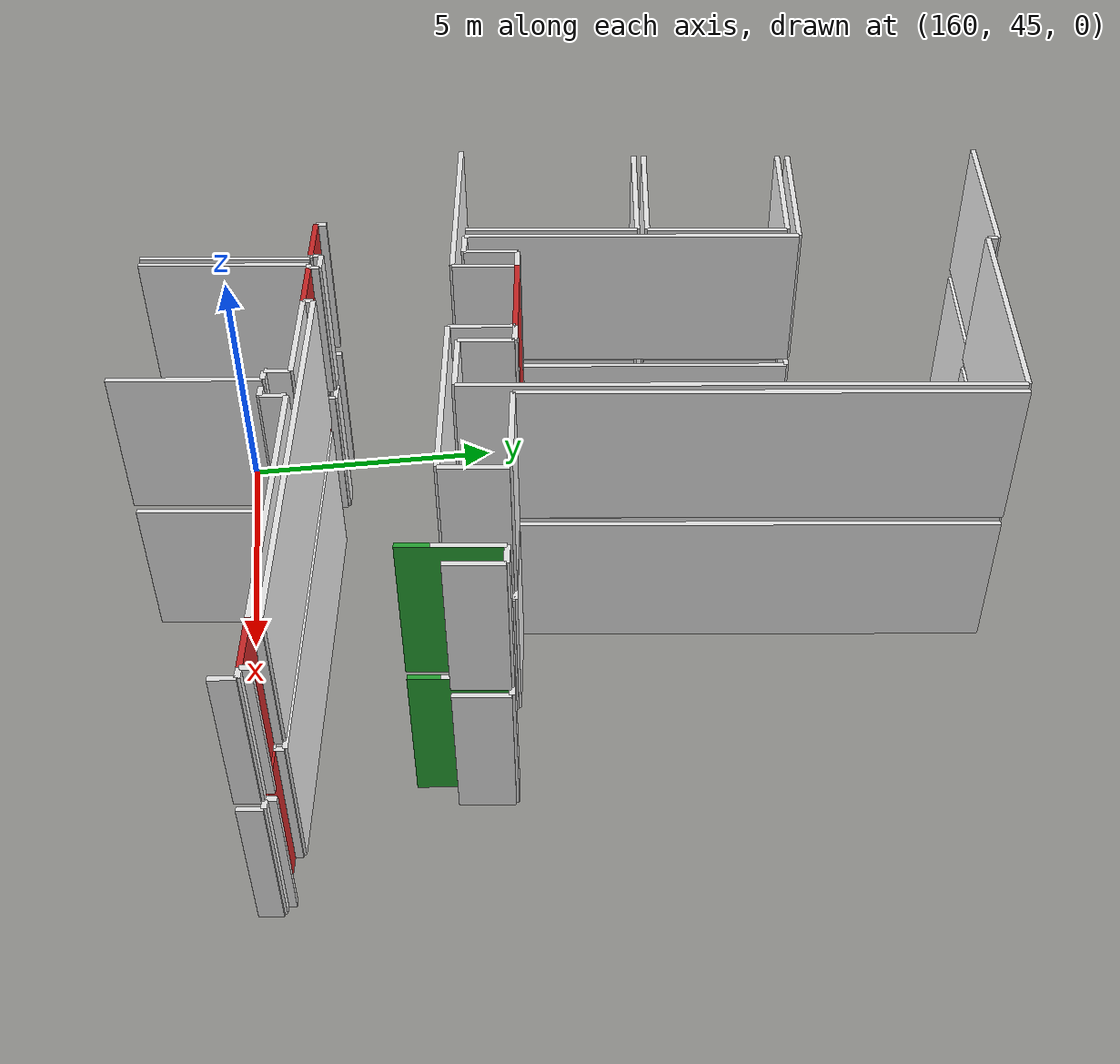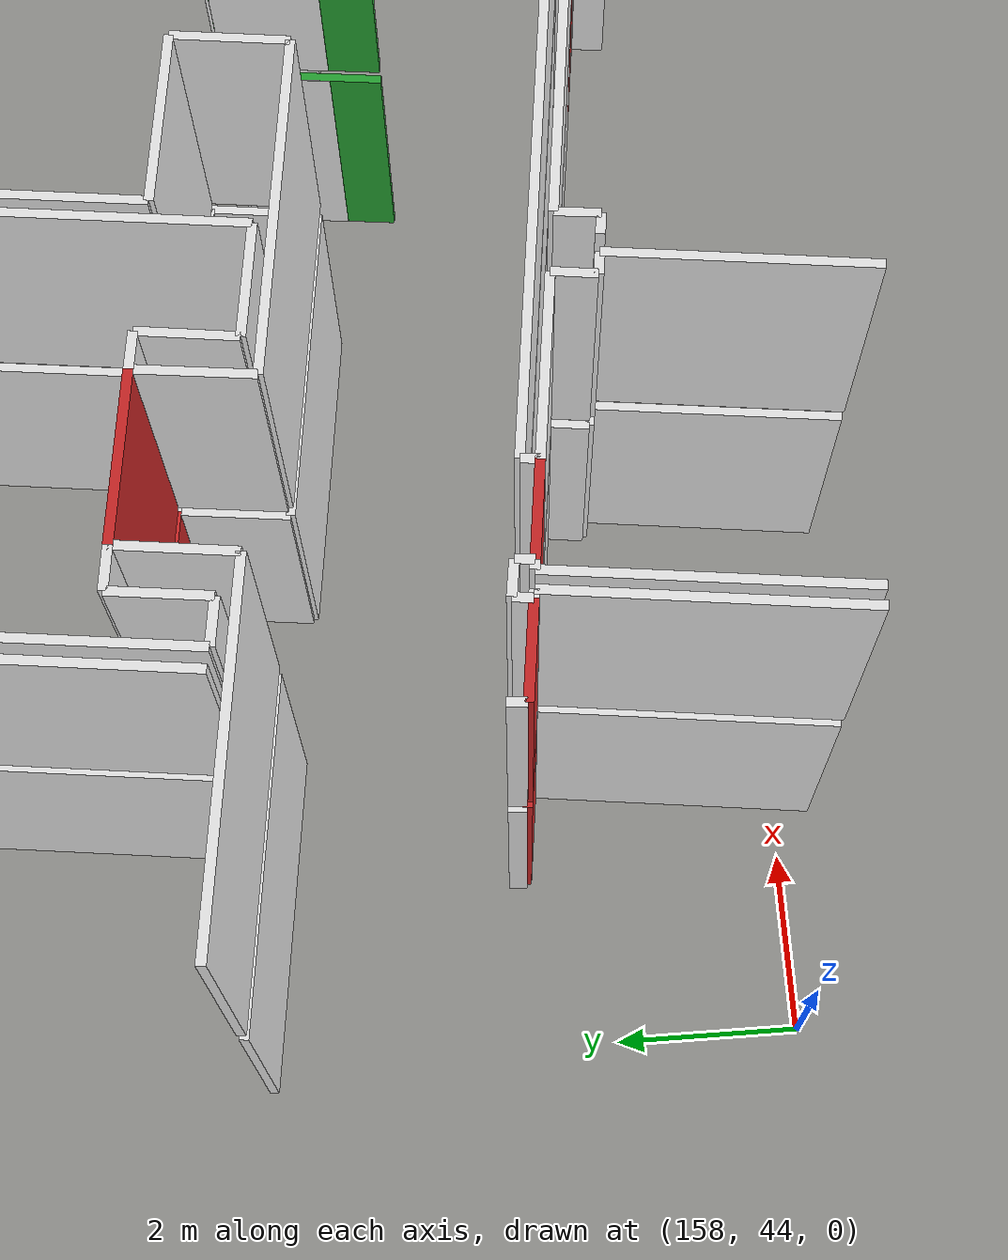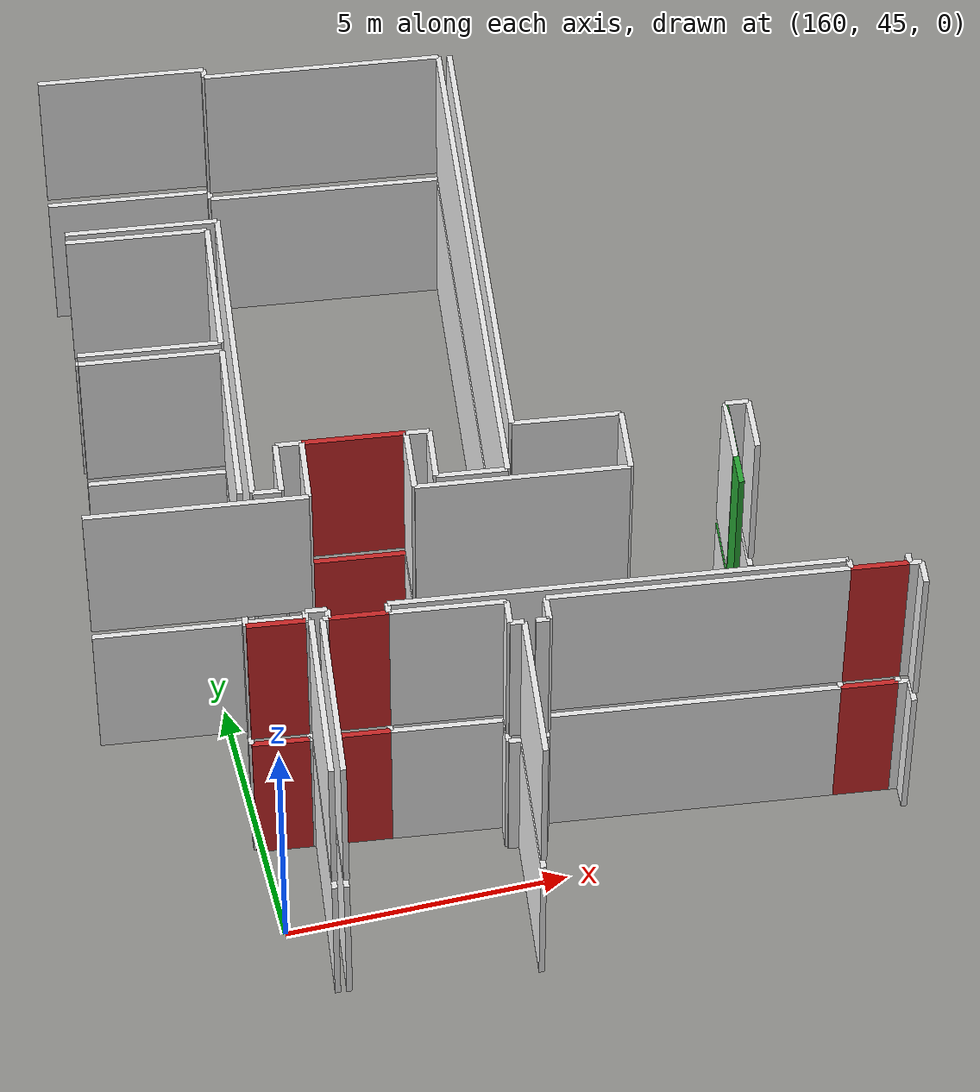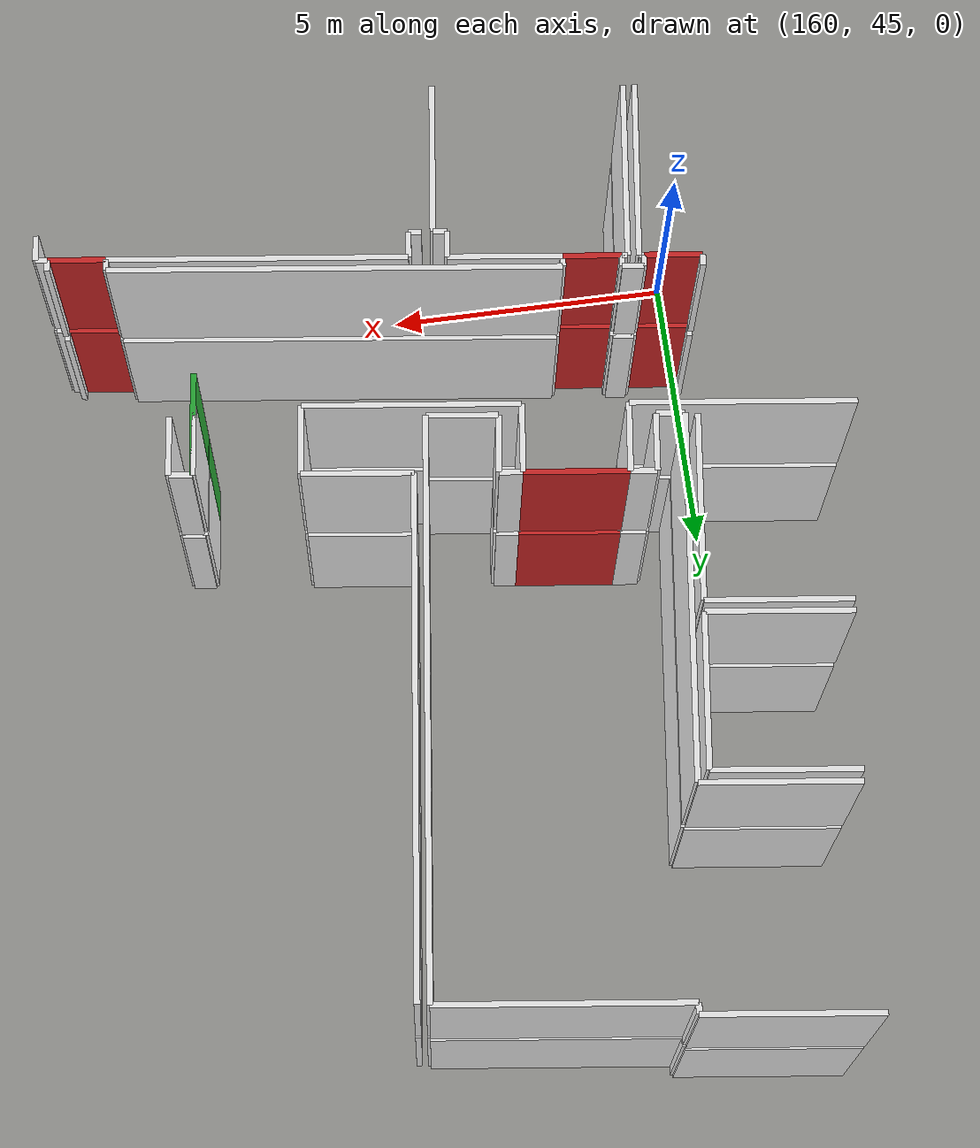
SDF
<sdf version="1.6">
 <world name="default">
  <model name="wall_160.4_46.8_0.0">
   <static>true</static>
   <pose>160.3850000000093 46.81999999983236 1.5 0 0 -0.1206236686924795</pose>
   <link name="link">
    <visual name="visual">
     <geometry><box><size>0.9972462083198822 0.1 3</size></box></geometry>
     <material>
      <script><uri>file://media/materials/scripts/gazebo.material</uri><name>Gazebo/Red</name></script>
     </material>
    </visual>
   </link>
  </model>
  <model name="wall_161.8_46.7_0.0">
   <static>true</static>
   <pose>161.7600000000093 46.66000000014901 1.5 0 0 -0.11942892612851068</pose>
   <link name="link">
    <visual name="visual">
     <geometry><box><size>1.0071742649744493 0.1 3</size></box></geometry>
     <material>
      <script><uri>file://media/materials/scripts/gazebo.material</uri><name>Gazebo/Red</name></script>
     </material>
    </visual>
   </link>
  </model>
  <model name="wall_170.5_45.6_0.0">
   <static>true</static>
   <pose>170.48499999998603 45.609999999869615 1.5 0 0 -0.1206236686924795</pose>
   <link name="link">
    <visual name="visual">
     <geometry><box><size>0.9972462083198822 0.1 3</size></box></geometry>
     <material>
      <script><uri>file://media/materials/scripts/gazebo.material</uri><name>Gazebo/Red</name></script>
     </material>
    </visual>
   </link>
  </model>
  <model name="wall_168.8_48.8_0.0">
   <static>true</static>
   <pose>168.83500000002095 48.825000000186265 1.5 0 0 -1.6875809222415865</pose>
   <link name="link">
    <visual name="visual">
     <geometry><box><size>1.8022763384447233 0.1 3</size></box></geometry>
     <material>
      <script><uri>file://media/materials/scripts/gazebo.material</uri><name>Gazebo/Green</name></script>
     </material>
    </visual>
   </link>
  </model>
  <model name="wall_162.6_50.5_0.0">
   <static>true</static>
   <pose>162.57000000000698 50.484999999869615 1.5 0 0 3.02415796381574</pose>
   <link name="link">
    <visual name="visual">
     <geometry><box><size>1.7923448329168745 0.1 3</size></box></geometry>
     <material>
      <script><uri>file://media/materials/scripts/gazebo.material</uri><name>Gazebo/Red</name></script>
     </material>
    </visual>
   </link>
  </model>
  <model name="wall_171.0_45.6_0.0">
   <static>true</static>
   <pose>170.99499999999534 45.64500000001863 1.5 0 0 -1.7273982035881303</pose>
   <link name="link">
    <visual name="visual">
     <geometry><box><size>0.1923538410258384 0.1 3</size></box></geometry>
     <material>
      <script><uri>file://media/materials/scripts/gazebo.material</uri><name>Gazebo/White</name></script>
     </material>
    </visual>
   </link>
  </model>
  <model name="wall_170.0_45.8_0.0">
   <static>true</static>
   <pose>170.0 45.764999999897555 1.5 0 0 1.4659193879370842</pose>
   <link name="link">
    <visual name="visual">
     <geometry><box><size>0.19104973169180559 0.1 3</size></box></geometry>
     <material>
      <script><uri>file://media/materials/scripts/gazebo.material</uri><name>Gazebo/White</name></script>
     </material>
    </visual>
   </link>
  </model>
  <model name="wall_166.1_46.3_0.0">
   <static>true</static>
   <pose>166.14500000001863 46.324999999953434 1.5 0 0 3.0218576675715907</pose>
   <link name="link">
    <visual name="visual">
     <geometry><box><size>7.7857433813364185 0.1 3</size></box></geometry>
     <material>
      <script><uri>file://media/materials/scripts/gazebo.material</uri><name>Gazebo/White</name></script>
     </material>
    </visual>
   </link>
  </model>
  <model name="wall_162.3_46.7_0.0">
   <static>true</static>
   <pose>162.27000000001863 46.69500000006519 1.5 0 0 -1.675673265652709</pose>
   <link name="link">
    <visual name="visual">
     <geometry><box><size>0.19104973169180559 0.1 3</size></box></geometry>
     <material>
      <script><uri>file://media/materials/scripts/gazebo.material</uri><name>Gazebo/White</name></script>
     </material>
    </visual>
   </link>
  </model>
  <model name="wall_161.3_46.8_0.0">
   <static>true</static>
   <pose>161.27000000001863 46.81500000017695 1.5 0 0 1.4659193879370842</pose>
   <link name="link">
    <visual name="visual">
     <geometry><box><size>0.19104973169180559 0.1 3</size></box></geometry>
     <material>
      <script><uri>file://media/materials/scripts/gazebo.material</uri><name>Gazebo/White</name></script>
     </material>
    </visual>
   </link>
  </model>
  <model name="wall_161.1_46.9_0.0">
   <static>true</static>
   <pose>161.09500000000116 46.93500000005588 1.5 0 0 3.007271212150422</pose>
   <link name="link">
    <visual name="visual">
     <geometry><box><size>0.3733630940800139 0.1 3</size></box></geometry>
     <material>
      <script><uri>file://media/materials/scripts/gazebo.material</uri><name>Gazebo/White</name></script>
     </material>
    </visual>
   </link>
  </model>
  <model name="wall_160.9_46.9_0.0">
   <static>true</static>
   <pose>160.89499999998952 46.859999999869615 1.5 0 0 -1.7196862741197598</pose>
   <link name="link">
    <visual name="visual">
     <geometry><box><size>0.20223748434128064 0.1 3</size></box></geometry>
     <material>
      <script><uri>file://media/materials/scripts/gazebo.material</uri><name>Gazebo/White</name></script>
     </material>
    </visual>
   </link>
  </model>
  <model name="wall_159.9_47.0_0.0">
   <static>true</static>
   <pose>159.89999999999418 46.97999999998137 1.5 0 0 1.4711276745918913</pose>
   <link name="link">
    <visual name="visual">
     <geometry><box><size>0.20099751260381943 0.1 3</size></box></geometry>
     <material>
      <script><uri>file://media/materials/scripts/gazebo.material</uri><name>Gazebo/White</name></script>
     </material>
    </visual>
   </link>
  </model>
  <model name="wall_159.6_49.6_0.0">
   <static>true</static>
   <pose>159.62000000002445 49.609999999869615 1.5 0 0 -0.11984180790081929</pose>
   <link name="link">
    <visual name="visual">
     <geometry><box><size>3.8475966524597003 0.1 3</size></box></geometry>
     <material>
      <script><uri>file://media/materials/scripts/gazebo.material</uri><name>Gazebo/White</name></script>
     </material>
    </visual>
   </link>
  </model>
  <model name="wall_161.6_50.0_0.0">
   <static>true</static>
   <pose>161.60500000001048 49.984999999869615 1.5 0 0 1.4474586259198403</pose>
   <link name="link">
    <visual name="visual">
     <geometry><box><size>1.2192620718694447 0.1 3</size></box></geometry>
     <material>
      <script><uri>file://media/materials/scripts/gazebo.material</uri><name>Gazebo/White</name></script>
     </material>
    </visual>
   </link>
  </model>
  <model name="wall_163.4_49.8_0.0">
   <static>true</static>
   <pose>163.39000000001397 49.77499999990687 1.5 0 0 -1.6859866085024886</pose>
   <link name="link">
    <visual name="visual">
     <geometry><box><size>1.2180722474113592 0.1 3</size></box></geometry>
     <material>
      <script><uri>file://media/materials/scripts/gazebo.material</uri><name>Gazebo/White</name></script>
     </material>
    </visual>
   </link>
  </model>
  <model name="wall_165.2_48.9_0.0">
   <static>true</static>
   <pose>165.1600000000035 48.949999999953434 1.5 0 0 -0.11900029336803308</pose>
   <link name="link">
    <visual name="visual">
     <geometry><box><size>3.7062110031539515 0.1 3</size></box></geometry>
     <material>
      <script><uri>file://media/materials/scripts/gazebo.material</uri><name>Gazebo/White</name></script>
     </material>
    </visual>
   </link>
  </model>
  <model name="wall_167.1_49.3_0.0">
   <static>true</static>
   <pose>167.07500000001164 49.330000000074506 1.5 0 0 1.446441332248135</pose>
   <link name="link">
    <visual name="visual">
     <geometry><box><size>1.2093386624324964 0.1 3</size></box></geometry>
     <material>
      <script><uri>file://media/materials/scripts/gazebo.material</uri><name>Gazebo/White</name></script>
     </material>
    </visual>
   </link>
  </model>
  <model name="wall_168.9_49.1_0.0">
   <static>true</static>
   <pose>168.8649999999907 49.11499999999069 1.5 0 0 -1.6941340276703445</pose>
   <link name="link">
    <visual name="visual">
     <geometry><box><size>1.2192620723387293 0.1 3</size></box></geometry>
     <material>
      <script><uri>file://media/materials/scripts/gazebo.material</uri><name>Gazebo/White</name></script>
     </material>
    </visual>
   </link>
  </model>
  <model name="wall_164.7_45.8_0.0">
   <static>true</static>
   <pose>164.7050000000163 45.83499999996275 1.5 0 0 -0.12970253828111597</pose>
   <link name="link">
    <visual name="visual">
     <geometry><box><size>0.23194827011012187 0.1 3</size></box></geometry>
     <material>
      <script><uri>file://media/materials/scripts/gazebo.material</uri><name>Gazebo/White</name></script>
     </material>
    </visual>
   </link>
  </model>
  <model name="wall_164.8_46.0_0.0">
   <static>true</static>
   <pose>164.84500000000116 46.049999999813735 1.5 0 0 1.4625257359507529</pose>
   <link name="link">
    <visual name="visual">
     <geometry><box><size>0.46270941201207827 0.1 3</size></box></geometry>
     <material>
      <script><uri>file://media/materials/scripts/gazebo.material</uri><name>Gazebo/White</name></script>
     </material>
    </visual>
   </link>
  </model>
  <model name="wall_167.4_46.0_0.0">
   <static>true</static>
   <pose>167.42999999999302 45.9749999998603 1.5 0 0 -0.11858166439217471</pose>
   <link name="link">
    <visual name="visual">
     <geometry><box><size>5.156209848308469 0.1 3</size></box></geometry>
     <material>
      <script><uri>file://media/materials/scripts/gazebo.material</uri><name>Gazebo/White</name></script>
     </material>
    </visual>
   </link>
  </model>
  <model name="wall_171.1_45.5_0.0">
   <static>true</static>
   <pose>171.0799999999872 45.53499999991618 1.5 0 0 -0.14888994659904642</pose>
   <link name="link">
    <visual name="visual">
     <geometry><box><size>0.20223748414268597 0.1 3</size></box></geometry>
     <material>
      <script><uri>file://media/materials/scripts/gazebo.material</uri><name>Gazebo/White</name></script>
     </material>
    </visual>
   </link>
  </model>
  <model name="wall_171.2_45.3_0.0">
   <static>true</static>
   <pose>171.15499999999884 45.300000000046566 1.5 0 0 -1.6839473083735081</pose>
   <link name="link">
    <visual name="visual">
     <geometry><box><size>0.4428317964528541 0.1 3</size></box></geometry>
     <material>
      <script><uri>file://media/materials/scripts/gazebo.material</uri><name>Gazebo/White</name></script>
     </material>
    </visual>
   </link>
  </model>
  <model name="wall_160.6_51.4_0.0">
   <static>true</static>
   <pose>160.60999999998603 51.35000000009313 1.5 0 0 1.4487071893822745</pose>
   <link name="link">
    <visual name="visual">
     <geometry><box><size>3.284448203056534 0.1 3</size></box></geometry>
     <material>
      <script><uri>file://media/materials/scripts/gazebo.material</uri><name>Gazebo/White</name></script>
     </material>
    </visual>
   </link>
  </model>
  <model name="wall_159.6_53.1_0.0">
   <static>true</static>
   <pose>159.57000000000698 53.125 1.5 0 0 3.025185827469413</pose>
   <link name="link">
    <visual name="visual">
     <geometry><box><size>2.4968980755988457 0.1 3</size></box></geometry>
     <material>
      <script><uri>file://media/materials/scripts/gazebo.material</uri><name>Gazebo/White</name></script>
     </material>
    </visual>
   </link>
  </model>
  <model name="wall_160.4_59.9_0.0">
   <static>true</static>
   <pose>160.44000000000233 59.93999999994412 1.5 0 0 -0.12022278677294355</pose>
   <link name="link">
    <visual name="visual">
     <geometry><box><size>3.0016662039824453 0.1 3</size></box></geometry>
     <material>
      <script><uri>file://media/materials/scripts/gazebo.material</uri><name>Gazebo/White</name></script>
     </material>
    </visual>
   </link>
  </model>
  <model name="wall_161.9_59.7_0.0">
   <static>true</static>
   <pose>161.9199999999837 59.66499999980442 1.5 0 0 -1.675673265652709</pose>
   <link name="link">
    <visual name="visual">
     <geometry><box><size>0.19104973169180559 0.1 3</size></box></geometry>
     <material>
      <script><uri>file://media/materials/scripts/gazebo.material</uri><name>Gazebo/White</name></script>
     </material>
    </visual>
   </link>
  </model>
  <model name="wall_164.0_59.3_0.0">
   <static>true</static>
   <pose>164.02999999999884 59.31499999994412 1.5 0 0 -0.11970791786700266</pose>
   <link name="link">
    <visual name="visual">
     <geometry><box><size>4.27056202392456 0.1 3</size></box></geometry>
     <material>
      <script><uri>file://media/materials/scripts/gazebo.material</uri><name>Gazebo/White</name></script>
     </material>
    </visual>
   </link>
  </model>
  <model name="wall_165.6_54.1_0.0">
   <static>true</static>
   <pose>165.55000000001746 54.11499999999069 1.5 0 0 -1.691540779261425</pose>
   <link name="link">
    <visual name="visual">
     <geometry><box><size>9.96253481813775 0.1 3</size></box></geometry>
     <material>
      <script><uri>file://media/materials/scripts/gazebo.material</uri><name>Gazebo/White</name></script>
     </material>
    </visual>
   </link>
  </model>
  <model name="wall_164.3_49.2_0.0">
   <static>true</static>
   <pose>164.3399999999965 49.24499999987893 1.5 0 0 3.0192558198525035</pose>
   <link name="link">
    <visual name="visual">
     <geometry><box><size>1.2291867230188886 0.1 3</size></box></geometry>
     <material>
      <script><uri>file://media/materials/scripts/gazebo.material</uri><name>Gazebo/White</name></script>
     </material>
    </visual>
   </link>
  </model>
  <model name="wall_163.8_49.8_0.0">
   <static>true</static>
   <pose>163.7949999999837 49.824999999953434 1.5 0 0 1.44278726814752</pose>
   <link name="link">
    <visual name="visual">
     <geometry><box><size>1.0183319696888344 0.1 3</size></box></geometry>
     <material>
      <script><uri>file://media/materials/scripts/gazebo.material</uri><name>Gazebo/White</name></script>
     </material>
    </visual>
   </link>
  </model>
  <model name="wall_163.7_50.4_0.0">
   <static>true</static>
   <pose>163.6600000000035 50.35499999998137 1.5 0 0 3.017237659490783</pose>
   <link name="link">
    <visual name="visual">
     <geometry><box><size>0.4031128873571693 0.1 3</size></box></geometry>
     <material>
      <script><uri>file://media/materials/scripts/gazebo.material</uri><name>Gazebo/White</name></script>
     </material>
    </visual>
   </link>
  </model>
  <model name="wall_161.5_50.6_0.0">
   <static>true</static>
   <pose>161.4549999999872 50.61499999999069 1.5 0 0 3.030935431805427</pose>
   <link name="link">
    <visual name="visual">
     <geometry><box><size>0.4527692569492954 0.1 3</size></box></geometry>
     <material>
      <script><uri>file://media/materials/scripts/gazebo.material</uri><name>Gazebo/White</name></script>
     </material>
    </visual>
   </link>
  </model>
  <model name="wall_161.2_50.1_0.0">
   <static>true</static>
   <pose>161.1699999999837 50.13500000000931 1.5 0 0 -1.6890538359013414</pose>
   <link name="link">
    <visual name="visual">
     <geometry><box><size>1.0171037314295985 0.1 3</size></box></geometry>
     <material>
      <script><uri>file://media/materials/scripts/gazebo.material</uri><name>Gazebo/White</name></script>
     </material>
    </visual>
   </link>
  </model>
  <model name="wall_160.9_49.7_0.0">
   <static>true</static>
   <pose>160.8649999999907 49.65999999991618 1.5 0 0 3.019750216455228</pose>
   <link name="link">
    <visual name="visual">
     <geometry><box><size>0.4936598018854468 0.1 3</size></box></geometry>
     <material>
      <script><uri>file://media/materials/scripts/gazebo.material</uri><name>Gazebo/White</name></script>
     </material>
    </visual>
   </link>
  </model>
  <model name="wall_161.0_52.9_0.0">
   <static>true</static>
   <pose>161.0 52.85499999998137 1.5 0 0 1.4513051071243046</pose>
   <link name="link">
    <visual name="visual">
     <geometry><box><size>6.375460767737294 0.1 3</size></box></geometry>
     <material>
      <script><uri>file://media/materials/scripts/gazebo.material</uri><name>Gazebo/White</name></script>
     </material>
    </visual>
   </link>
  </model>
  <model name="wall_160.0_56.2_0.0">
   <static>true</static>
   <pose>160.04000000000815 56.17999999993481 1.5 0 0 3.0227523090833937</pose>
   <link name="link">
    <visual name="visual">
     <geometry><box><size>2.6990368652271632 0.1 3</size></box></geometry>
     <material>
      <script><uri>file://media/materials/scripts/gazebo.material</uri><name>Gazebo/White</name></script>
     </material>
    </visual>
   </link>
  </model>
  <model name="wall_169.3_49.2_0.0">
   <static>true</static>
   <pose>169.27999999999884 49.15999999991618 1.5 0 0 1.453687582178367</pose>
   <link name="link">
    <visual name="visual">
     <geometry><box><size>1.0270345661421774 0.1 3</size></box></geometry>
     <material>
      <script><uri>file://media/materials/scripts/gazebo.material</uri><name>Gazebo/White</name></script>
     </material>
    </visual>
   </link>
  </model>
  <model name="wall_169.1_49.7_0.0">
   <static>true</static>
   <pose>169.14000000001397 49.69500000006519 1.5 0 0 3.01723765836245</pose>
   <link name="link">
    <visual name="visual">
     <geometry><box><size>0.4031128874726857 0.1 3</size></box></geometry>
     <material>
      <script><uri>file://media/materials/scripts/gazebo.material</uri><name>Gazebo/White</name></script>
     </material>
    </visual>
   </link>
  </model>
  <model name="wall_166.2_50.0_0.0">
   <static>true</static>
   <pose>166.21000000002095 50.045000000158325 1.5 0 0 3.0198571684511863</pose>
   <link name="link">
    <visual name="visual">
     <geometry><box><size>1.894016895386348 0.1 3</size></box></geometry>
     <material>
      <script><uri>file://media/materials/scripts/gazebo.material</uri><name>Gazebo/White</name></script>
     </material>
    </visual>
   </link>
  </model>
  <model name="wall_165.8_54.6_0.0">
   <static>true</static>
   <pose>165.80999999999767 54.59499999997206 1.5 0 0 1.4496339921387622</pose>
   <link name="link">
    <visual name="visual">
     <geometry><box><size>8.935507819571937 0.1 3</size></box></geometry>
     <material>
      <script><uri>file://media/materials/scripts/gazebo.material</uri><name>Gazebo/White</name></script>
     </material>
    </visual>
   </link>
  </model>
  <model name="wall_160.8_45.2_0.0">
   <static>true</static>
   <pose>160.77499999999418 45.16500000003725 1.5 0 0 -1.6932095761983161</pose>
   <link name="link">
    <visual name="visual">
     <geometry><box><size>3.193900436690713 0.1 3</size></box></geometry>
     <material>
      <script><uri>file://media/materials/scripts/gazebo.material</uri><name>Gazebo/White</name></script>
     </material>
    </visual>
   </link>
  </model>
  <model name="wall_160.9_46.8_0.0">
   <static>true</static>
   <pose>160.92499999998836 46.75499999988824 1.5 0 0 -0.11065721876040727</pose>
   <link name="link">
    <visual name="visual">
     <geometry><box><size>0.09055385132429387 0.1 3</size></box></geometry>
     <material>
      <script><uri>file://media/materials/scripts/gazebo.material</uri><name>Gazebo/White</name></script>
     </material>
    </visual>
   </link>
  </model>
  <model name="wall_161.0_45.1_0.0">
   <static>true</static>
   <pose>160.97000000000116 45.14500000001863 1.5 0 0 1.4514917943710839</pose>
   <link name="link">
    <visual name="visual">
     <geometry><box><size>3.1926947864596977 0.1 3</size></box></geometry>
     <material>
      <script><uri>file://media/materials/scripts/gazebo.material</uri><name>Gazebo/White</name></script>
     </material>
    </visual>
   </link>
  </model>
  <model name="wall_161.2_46.7_0.0">
   <static>true</static>
   <pose>161.20999999999185 46.72500000009313 1.5 0 0 -0.09966865024353948</pose>
   <link name="link">
    <visual name="visual">
     <geometry><box><size>0.10049875622371936 0.1 3</size></box></geometry>
     <material>
      <script><uri>file://media/materials/scripts/gazebo.material</uri><name>Gazebo/White</name></script>
     </material>
    </visual>
   </link>
  </model>
  <model name="wall_163.2_46.5_0.0">
   <static>true</static>
   <pose>163.2399999999907 46.47999999998137 1.5 0 0 -0.12184243713456504</pose>
   <link name="link">
    <visual name="visual">
     <geometry><box><size>1.9746392075417871 0.1 3</size></box></geometry>
     <material>
      <script><uri>file://media/materials/scripts/gazebo.material</uri><name>Gazebo/White</name></script>
     </material>
    </visual>
   </link>
  </model>
  <model name="wall_164.2_46.1_0.0">
   <static>true</static>
   <pose>164.18999999997322 46.12999999988824 1.5 0 0 -1.7004988639562184</pose>
   <link name="link">
    <visual name="visual">
     <geometry><box><size>0.46389654015248694 0.1 3</size></box></geometry>
     <material>
      <script><uri>file://media/materials/scripts/gazebo.material</uri><name>Gazebo/White</name></script>
     </material>
    </visual>
   </link>
  </model>
  <model name="wall_164.3_45.9_0.0">
   <static>true</static>
   <pose>164.27999999999884 45.88500000000931 1.5 0 0 -0.12435499368110904</pose>
   <link name="link">
    <visual name="visual">
     <geometry><box><size>0.24186773247205975 0.1 3</size></box></geometry>
     <material>
      <script><uri>file://media/materials/scripts/gazebo.material</uri><name>Gazebo/White</name></script>
     </material>
    </visual>
   </link>
  </model>
  <model name="wall_164.2_44.5_0.0">
   <static>true</static>
   <pose>164.23500000001513 44.515000000130385 1.5 0 0 -1.6919709595141523</pose>
   <link name="link">
    <visual name="visual">
     <geometry><box><size>2.73001831492187 0.1 3</size></box></geometry>
     <material>
      <script><uri>file://media/materials/scripts/gazebo.material</uri><name>Gazebo/White</name></script>
     </material>
    </visual>
   </link>
  </model>
  <model name="wall_161.0_54.5_0.0">
   <static>true</static>
   <pose>160.99499999999534 54.50499999988824 1.5 0 0 1.4478244572426628</pose>
   <link name="link">
    <visual name="visual">
     <geometry><box><size>2.6903159664943592 0.1 3</size></box></geometry>
     <material>
      <script><uri>file://media/materials/scripts/gazebo.material</uri><name>Gazebo/White</name></script>
     </material>
    </visual>
   </link>
  </model>
  <model name="wall_159.9_56.0_0.0">
   <static>true</static>
   <pose>159.91499999997905 55.98999999999069 1.5 0 0 3.021688668113723</pose>
   <link name="link">
    <visual name="visual">
     <geometry><box><size>2.508007177047398 0.1 3</size></box></geometry>
     <material>
      <script><uri>file://media/materials/scripts/gazebo.material</uri><name>Gazebo/White</name></script>
     </material>
    </visual>
   </link>
  </model>
  <model name="wall_159.6_53.3_0.0">
   <static>true</static>
   <pose>159.5899999999965 53.32000000006519 1.5 0 0 -0.12038282090969171</pose>
   <link name="link">
    <visual name="visual">
     <geometry><box><size>2.498079262226073 0.1 3</size></box></geometry>
     <material>
      <script><uri>file://media/materials/scripts/gazebo.material</uri><name>Gazebo/White</name></script>
     </material>
    </visual>
   </link>
  </model>
  <model name="wall_160.4_46.8_3.2">
   <static>true</static>
   <pose>160.3850000000093 46.81999999983236 4.7 0 0 -0.1206236686924795</pose>
   <link name="link">
    <visual name="visual">
     <geometry><box><size>0.9972462083198822 0.1 3</size></box></geometry>
     <material>
      <script><uri>file://media/materials/scripts/gazebo.material</uri><name>Gazebo/Red</name></script>
     </material>
    </visual>
   </link>
  </model>
  <model name="wall_161.8_46.7_3.2">
   <static>true</static>
   <pose>161.7600000000093 46.66000000014901 4.7 0 0 -0.11942892612851068</pose>
   <link name="link">
    <visual name="visual">
     <geometry><box><size>1.0071742649744493 0.1 3</size></box></geometry>
     <material>
      <script><uri>file://media/materials/scripts/gazebo.material</uri><name>Gazebo/Red</name></script>
     </material>
    </visual>
   </link>
  </model>
  <model name="wall_170.5_45.6_3.2">
   <static>true</static>
   <pose>170.48499999998603 45.609999999869615 4.7 0 0 -0.1206236686924795</pose>
   <link name="link">
    <visual name="visual">
     <geometry><box><size>0.9972462083198822 0.1 3</size></box></geometry>
     <material>
      <script><uri>file://media/materials/scripts/gazebo.material</uri><name>Gazebo/Red</name></script>
     </material>
    </visual>
   </link>
  </model>
  <model name="wall_168.8_48.8_3.2">
   <static>true</static>
   <pose>168.83500000002095 48.825000000186265 4.7 0 0 -1.6875809222415865</pose>
   <link name="link">
    <visual name="visual">
     <geometry><box><size>1.8022763384447233 0.1 3</size></box></geometry>
     <material>
      <script><uri>file://media/materials/scripts/gazebo.material</uri><name>Gazebo/Green</name></script>
     </material>
    </visual>
   </link>
  </model>
  <model name="wall_162.6_50.5_3.2">
   <static>true</static>
   <pose>162.57000000000698 50.484999999869615 4.7 0 0 3.02415796381574</pose>
   <link name="link">
    <visual name="visual">
     <geometry><box><size>1.7923448329168745 0.1 3</size></box></geometry>
     <material>
      <script><uri>file://media/materials/scripts/gazebo.material</uri><name>Gazebo/Red</name></script>
     </material>
    </visual>
   </link>
  </model>
  <model name="wall_171.0_45.6_3.2">
   <static>true</static>
   <pose>170.99499999999534 45.64500000001863 4.7 0 0 -1.7273982035881303</pose>
   <link name="link">
    <visual name="visual">
     <geometry><box><size>0.1923538410258384 0.1 3</size></box></geometry>
     <material>
      <script><uri>file://media/materials/scripts/gazebo.material</uri><name>Gazebo/White</name></script>
     </material>
    </visual>
   </link>
  </model>
  <model name="wall_170.0_45.8_3.2">
   <static>true</static>
   <pose>170.0 45.764999999897555 4.7 0 0 1.4659193879370842</pose>
   <link name="link">
    <visual name="visual">
     <geometry><box><size>0.19104973169180559 0.1 3</size></box></geometry>
     <material>
      <script><uri>file://media/materials/scripts/gazebo.material</uri><name>Gazebo/White</name></script>
     </material>
    </visual>
   </link>
  </model>
  <model name="wall_166.1_46.3_3.2">
   <static>true</static>
   <pose>166.14500000001863 46.324999999953434 4.7 0 0 3.0218576675715907</pose>
   <link name="link">
    <visual name="visual">
     <geometry><box><size>7.7857433813364185 0.1 3</size></box></geometry>
     <material>
      <script><uri>file://media/materials/scripts/gazebo.material</uri><name>Gazebo/White</name></script>
     </material>
    </visual>
   </link>
  </model>
  <model name="wall_162.3_46.7_3.2">
   <static>true</static>
   <pose>162.27000000001863 46.69500000006519 4.7 0 0 -1.675673265652709</pose>
   <link name="link">
    <visual name="visual">
     <geometry><box><size>0.19104973169180559 0.1 3</size></box></geometry>
     <material>
      <script><uri>file://media/materials/scripts/gazebo.material</uri><name>Gazebo/White</name></script>
     </material>
    </visual>
   </link>
  </model>
  <model name="wall_161.3_46.8_3.2">
   <static>true</static>
   <pose>161.27000000001863 46.81500000017695 4.7 0 0 1.4659193879370842</pose>
   <link name="link">
    <visual name="visual">
     <geometry><box><size>0.19104973169180559 0.1 3</size></box></geometry>
     <material>
      <script><uri>file://media/materials/scripts/gazebo.material</uri><name>Gazebo/White</name></script>
     </material>
    </visual>
   </link>
  </model>
  <model name="wall_161.1_46.9_3.2">
   <static>true</static>
   <pose>161.09500000000116 46.93500000005588 4.7 0 0 3.007271212150422</pose>
   <link name="link">
    <visual name="visual">
     <geometry><box><size>0.3733630940800139 0.1 3</size></box></geometry>
     <material>
      <script><uri>file://media/materials/scripts/gazebo.material</uri><name>Gazebo/White</name></script>
     </material>
    </visual>
   </link>
  </model>
  <model name="wall_160.9_46.9_3.2">
   <static>true</static>
   <pose>160.89499999998952 46.859999999869615 4.7 0 0 -1.7196862741197598</pose>
   <link name="link">
    <visual name="visual">
     <geometry><box><size>0.20223748434128064 0.1 3</size></box></geometry>
     <material>
      <script><uri>file://media/materials/scripts/gazebo.material</uri><name>Gazebo/White</name></script>
     </material>
    </visual>
   </link>
  </model>
  <model name="wall_159.9_47.0_3.2">
   <static>true</static>
   <pose>159.89999999999418 46.97999999998137 4.7 0 0 1.4711276745918913</pose>
   <link name="link">
    <visual name="visual">
     <geometry><box><size>0.20099751260381943 0.1 3</size></box></geometry>
     <material>
      <script><uri>file://media/materials/scripts/gazebo.material</uri><name>Gazebo/White</name></script>
     </material>
    </visual>
   </link>
  </model>
  <model name="wall_159.6_49.6_3.2">
   <static>true</static>
   <pose>159.62000000002445 49.609999999869615 4.7 0 0 -0.11984180790081929</pose>
   <link name="link">
    <visual name="visual">
     <geometry><box><size>3.8475966524597003 0.1 3</size></box></geometry>
     <material>
      <script><uri>file://media/materials/scripts/gazebo.material</uri><name>Gazebo/White</name></script>
     </material>
    </visual>
   </link>
  </model>
  <model name="wall_161.6_50.0_3.2">
   <static>true</static>
   <pose>161.60500000001048 49.984999999869615 4.7 0 0 1.4474586259198403</pose>
   <link name="link">
    <visual name="visual">
     <geometry><box><size>1.2192620718694447 0.1 3</size></box></geometry>
     <material>
      <script><uri>file://media/materials/scripts/gazebo.material</uri><name>Gazebo/White</name></script>
     </material>
    </visual>
   </link>
  </model>
  <model name="wall_163.4_49.8_3.2">
   <static>true</static>
   <pose>163.39000000001397 49.77499999990687 4.7 0 0 -1.6859866085024886</pose>
   <link name="link">
    <visual name="visual">
     <geometry><box><size>1.2180722474113592 0.1 3</size></box></geometry>
     <material>
      <script><uri>file://media/materials/scripts/gazebo.material</uri><name>Gazebo/White</name></script>
     </material>
    </visual>
   </link>
  </model>
  <model name="wall_165.2_48.9_3.2">
   <static>true</static>
   <pose>165.1600000000035 48.949999999953434 4.7 0 0 -0.11900029336803308</pose>
   <link name="link">
    <visual name="visual">
     <geometry><box><size>3.7062110031539515 0.1 3</size></box></geometry>
     <material>
      <script><uri>file://media/materials/scripts/gazebo.material</uri><name>Gazebo/White</name></script>
     </material>
    </visual>
   </link>
  </model>
  <model name="wall_167.1_49.3_3.2">
   <static>true</static>
   <pose>167.07500000001164 49.330000000074506 4.7 0 0 1.446441332248135</pose>
   <link name="link">
    <visual name="visual">
     <geometry><box><size>1.2093386624324964 0.1 3</size></box></geometry>
     <material>
      <script><uri>file://media/materials/scripts/gazebo.material</uri><name>Gazebo/White</name></script>
     </material>
    </visual>
   </link>
  </model>
  <model name="wall_168.9_49.1_3.2">
   <static>true</static>
   <pose>168.8649999999907 49.11499999999069 4.7 0 0 -1.6941340276703445</pose>
   <link name="link">
    <visual name="visual">
     <geometry><box><size>1.2192620723387293 0.1 3</size></box></geometry>
     <material>
      <script><uri>file://media/materials/scripts/gazebo.material</uri><name>Gazebo/White</name></script>
     </material>
    </visual>
   </link>
  </model>
  <model name="wall_164.7_45.8_3.2">
   <static>true</static>
   <pose>164.7050000000163 45.83499999996275 4.7 0 0 -0.12970253828111597</pose>
   <link name="link">
    <visual name="visual">
     <geometry><box><size>0.23194827011012187 0.1 3</size></box></geometry>
     <material>
      <script><uri>file://media/materials/scripts/gazebo.material</uri><name>Gazebo/White</name></script>
     </material>
    </visual>
   </link>
  </model>
  <model name="wall_164.8_46.0_3.2">
   <static>true</static>
   <pose>164.84500000000116 46.049999999813735 4.7 0 0 1.4625257359507529</pose>
   <link name="link">
    <visual name="visual">
     <geometry><box><size>0.46270941201207827 0.1 3</size></box></geometry>
     <material>
      <script><uri>file://media/materials/scripts/gazebo.material</uri><name>Gazebo/White</name></script>
     </material>
    </visual>
   </link>
  </model>
  <model name="wall_167.4_46.0_3.2">
   <static>true</static>
   <pose>167.42999999999302 45.9749999998603 4.7 0 0 -0.11858166439217471</pose>
   <link name="link">
    <visual name="visual">
     <geometry><box><size>5.156209848308469 0.1 3</size></box></geometry>
     <material>
      <script><uri>file://media/materials/scripts/gazebo.material</uri><name>Gazebo/White</name></script>
     </material>
    </visual>
   </link>
  </model>
  <model name="wall_171.1_45.5_3.2">
   <static>true</static>
   <pose>171.0799999999872 45.53499999991618 4.7 0 0 -0.14888994659904642</pose>
   <link name="link">
    <visual name="visual">
     <geometry><box><size>0.20223748414268597 0.1 3</size></box></geometry>
     <material>
      <script><uri>file://media/materials/scripts/gazebo.material</uri><name>Gazebo/White</name></script>
     </material>
    </visual>
   </link>
  </model>
  <model name="wall_171.2_45.3_3.2">
   <static>true</static>
   <pose>171.15499999999884 45.300000000046566 4.7 0 0 -1.6839473083735081</pose>
   <link name="link">
    <visual name="visual">
     <geometry><box><size>0.4428317964528541 0.1 3</size></box></geometry>
     <material>
      <script><uri>file://media/materials/scripts/gazebo.material</uri><name>Gazebo/White</name></script>
     </material>
    </visual>
   </link>
  </model>
  <model name="wall_160.6_51.4_3.2">
   <static>true</static>
   <pose>160.60999999998603 51.35000000009313 4.7 0 0 1.4487071893822745</pose>
   <link name="link">
    <visual name="visual">
     <geometry><box><size>3.284448203056534 0.1 3</size></box></geometry>
     <material>
      <script><uri>file://media/materials/scripts/gazebo.material</uri><name>Gazebo/White</name></script>
     </material>
    </visual>
   </link>
  </model>
  <model name="wall_159.6_53.1_3.2">
   <static>true</static>
   <pose>159.57000000000698 53.125 4.7 0 0 3.025185827469413</pose>
   <link name="link">
    <visual name="visual">
     <geometry><box><size>2.4968980755988457 0.1 3</size></box></geometry>
     <material>
      <script><uri>file://media/materials/scripts/gazebo.material</uri><name>Gazebo/White</name></script>
     </material>
    </visual>
   </link>
  </model>
  <model name="wall_160.4_59.9_3.2">
   <static>true</static>
   <pose>160.44000000000233 59.93999999994412 4.7 0 0 -0.12022278677294355</pose>
   <link name="link">
    <visual name="visual">
     <geometry><box><size>3.0016662039824453 0.1 3</size></box></geometry>
     <material>
      <script><uri>file://media/materials/scripts/gazebo.material</uri><name>Gazebo/White</name></script>
     </material>
    </visual>
   </link>
  </model>
  <model name="wall_161.9_59.7_3.2">
   <static>true</static>
   <pose>161.9199999999837 59.66499999980442 4.7 0 0 -1.675673265652709</pose>
   <link name="link">
    <visual name="visual">
     <geometry><box><size>0.19104973169180559 0.1 3</size></box></geometry>
     <material>
      <script><uri>file://media/materials/scripts/gazebo.material</uri><name>Gazebo/White</name></script>
     </material>
    </visual>
   </link>
  </model>
  <model name="wall_164.0_59.3_3.2">
   <static>true</static>
   <pose>164.02999999999884 59.31499999994412 4.7 0 0 -0.11970791786700266</pose>
   <link name="link">
    <visual name="visual">
     <geometry><box><size>4.27056202392456 0.1 3</size></box></geometry>
     <material>
      <script><uri>file://media/materials/scripts/gazebo.material</uri><name>Gazebo/White</name></script>
     </material>
    </visual>
   </link>
  </model>
  <model name="wall_165.6_54.1_3.2">
   <static>true</static>
   <pose>165.55000000001746 54.11499999999069 4.7 0 0 -1.691540779261425</pose>
   <link name="link">
    <visual name="visual">
     <geometry><box><size>9.96253481813775 0.1 3</size></box></geometry>
     <material>
      <script><uri>file://media/materials/scripts/gazebo.material</uri><name>Gazebo/White</name></script>
     </material>
    </visual>
   </link>
  </model>
  <model name="wall_164.3_49.2_3.2">
   <static>true</static>
   <pose>164.3399999999965 49.24499999987893 4.7 0 0 3.0192558198525035</pose>
   <link name="link">
    <visual name="visual">
     <geometry><box><size>1.2291867230188886 0.1 3</size></box></geometry>
     <material>
      <script><uri>file://media/materials/scripts/gazebo.material</uri><name>Gazebo/White</name></script>
     </material>
    </visual>
   </link>
  </model>
  <model name="wall_163.8_49.8_3.2">
   <static>true</static>
   <pose>163.7949999999837 49.824999999953434 4.7 0 0 1.44278726814752</pose>
   <link name="link">
    <visual name="visual">
     <geometry><box><size>1.0183319696888344 0.1 3</size></box></geometry>
     <material>
      <script><uri>file://media/materials/scripts/gazebo.material</uri><name>Gazebo/White</name></script>
     </material>
    </visual>
   </link>
  </model>
  <model name="wall_163.7_50.4_3.2">
   <static>true</static>
   <pose>163.6600000000035 50.35499999998137 4.7 0 0 3.017237659490783</pose>
   <link name="link">
    <visual name="visual">
     <geometry><box><size>0.4031128873571693 0.1 3</size></box></geometry>
     <material>
      <script><uri>file://media/materials/scripts/gazebo.material</uri><name>Gazebo/White</name></script>
     </material>
    </visual>
   </link>
  </model>
  <model name="wall_161.5_50.6_3.2">
   <static>true</static>
   <pose>161.4549999999872 50.61499999999069 4.7 0 0 3.030935431805427</pose>
   <link name="link">
    <visual name="visual">
     <geometry><box><size>0.4527692569492954 0.1 3</size></box></geometry>
     <material>
      <script><uri>file://media/materials/scripts/gazebo.material</uri><name>Gazebo/White</name></script>
     </material>
    </visual>
   </link>
  </model>
  <model name="wall_161.2_50.1_3.2">
   <static>true</static>
   <pose>161.1699999999837 50.13500000000931 4.7 0 0 -1.6890538359013414</pose>
   <link name="link">
    <visual name="visual">
     <geometry><box><size>1.0171037314295985 0.1 3</size></box></geometry>
     <material>
      <script><uri>file://media/materials/scripts/gazebo.material</uri><name>Gazebo/White</name></script>
     </material>
    </visual>
   </link>
  </model>
  <model name="wall_160.9_49.7_3.2">
   <static>true</static>
   <pose>160.8649999999907 49.65999999991618 4.7 0 0 3.019750216455228</pose>
   <link name="link">
    <visual name="visual">
     <geometry><box><size>0.4936598018854468 0.1 3</size></box></geometry>
     <material>
      <script><uri>file://media/materials/scripts/gazebo.material</uri><name>Gazebo/White</name></script>
     </material>
    </visual>
   </link>
  </model>
  <model name="wall_161.0_52.9_3.2">
   <static>true</static>
   <pose>161.0 52.85499999998137 4.7 0 0 1.4513051071243046</pose>
   <link name="link">
    <visual name="visual">
     <geometry><box><size>6.375460767737294 0.1 3</size></box></geometry>
     <material>
      <script><uri>file://media/materials/scripts/gazebo.material</uri><name>Gazebo/White</name></script>
     </material>
    </visual>
   </link>
  </model>
  <model name="wall_160.0_56.2_3.2">
   <static>true</static>
   <pose>160.04000000000815 56.17999999993481 4.7 0 0 3.0227523090833937</pose>
   <link name="link">
    <visual name="visual">
     <geometry><box><size>2.6990368652271632 0.1 3</size></box></geometry>
     <material>
      <script><uri>file://media/materials/scripts/gazebo.material</uri><name>Gazebo/White</name></script>
     </material>
    </visual>
   </link>
  </model>
  <model name="wall_169.3_49.2_3.2">
   <static>true</static>
   <pose>169.27999999999884 49.15999999991618 4.7 0 0 1.453687582178367</pose>
   <link name="link">
    <visual name="visual">
     <geometry><box><size>1.0270345661421774 0.1 3</size></box></geometry>
     <material>
      <script><uri>file://media/materials/scripts/gazebo.material</uri><name>Gazebo/White</name></script>
     </material>
    </visual>
   </link>
  </model>
  <model name="wall_169.1_49.7_3.2">
   <static>true</static>
   <pose>169.14000000001397 49.69500000006519 4.7 0 0 3.01723765836245</pose>
   <link name="link">
    <visual name="visual">
     <geometry><box><size>0.4031128874726857 0.1 3</size></box></geometry>
     <material>
      <script><uri>file://media/materials/scripts/gazebo.material</uri><name>Gazebo/White</name></script>
     </material>
    </visual>
   </link>
  </model>
  <model name="wall_166.2_50.0_3.2">
   <static>true</static>
   <pose>166.21000000002095 50.045000000158325 4.7 0 0 3.0198571684511863</pose>
   <link name="link">
    <visual name="visual">
     <geometry><box><size>1.894016895386348 0.1 3</size></box></geometry>
     <material>
      <script><uri>file://media/materials/scripts/gazebo.material</uri><name>Gazebo/White</name></script>
     </material>
    </visual>
   </link>
  </model>
  <model name="wall_165.8_54.6_3.2">
   <static>true</static>
   <pose>165.80999999999767 54.59499999997206 4.7 0 0 1.4496339921387622</pose>
   <link name="link">
    <visual name="visual">
     <geometry><box><size>8.935507819571937 0.1 3</size></box></geometry>
     <material>
      <script><uri>file://media/materials/scripts/gazebo.material</uri><name>Gazebo/White</name></script>
     </material>
    </visual>
   </link>
  </model>
  <model name="wall_160.8_45.2_3.2">
   <static>true</static>
   <pose>160.77499999999418 45.16500000003725 4.7 0 0 -1.6932095761983161</pose>
   <link name="link">
    <visual name="visual">
     <geometry><box><size>3.193900436690713 0.1 3</size></box></geometry>
     <material>
      <script><uri>file://media/materials/scripts/gazebo.material</uri><name>Gazebo/White</name></script>
     </material>
    </visual>
   </link>
  </model>
  <model name="wall_160.9_46.8_3.2">
   <static>true</static>
   <pose>160.92499999998836 46.75499999988824 4.7 0 0 -0.11065721876040727</pose>
   <link name="link">
    <visual name="visual">
     <geometry><box><size>0.09055385132429387 0.1 3</size></box></geometry>
     <material>
      <script><uri>file://media/materials/scripts/gazebo.material</uri><name>Gazebo/White</name></script>
     </material>
    </visual>
   </link>
  </model>
  <model name="wall_161.0_45.1_3.2">
   <static>true</static>
   <pose>160.97000000000116 45.14500000001863 4.7 0 0 1.4514917943710839</pose>
   <link name="link">
    <visual name="visual">
     <geometry><box><size>3.1926947864596977 0.1 3</size></box></geometry>
     <material>
      <script><uri>file://media/materials/scripts/gazebo.material</uri><name>Gazebo/White</name></script>
     </material>
    </visual>
   </link>
  </model>
  <model name="wall_161.2_46.7_3.2">
   <static>true</static>
   <pose>161.20999999999185 46.72500000009313 4.7 0 0 -0.09966865024353948</pose>
   <link name="link">
    <visual name="visual">
     <geometry><box><size>0.10049875622371936 0.1 3</size></box></geometry>
     <material>
      <script><uri>file://media/materials/scripts/gazebo.material</uri><name>Gazebo/White</name></script>
     </material>
    </visual>
   </link>
  </model>
  <model name="wall_163.2_46.5_3.2">
   <static>true</static>
   <pose>163.2399999999907 46.47999999998137 4.7 0 0 -0.12184243713456504</pose>
   <link name="link">
    <visual name="visual">
     <geometry><box><size>1.9746392075417871 0.1 3</size></box></geometry>
     <material>
      <script><uri>file://media/materials/scripts/gazebo.material</uri><name>Gazebo/White</name></script>
     </material>
    </visual>
   </link>
  </model>
  <model name="wall_164.2_46.1_3.2">
   <static>true</static>
   <pose>164.18999999997322 46.12999999988824 4.7 0 0 -1.7004988639562184</pose>
   <link name="link">
    <visual name="visual">
     <geometry><box><size>0.46389654015248694 0.1 3</size></box></geometry>
     <material>
      <script><uri>file://media/materials/scripts/gazebo.material</uri><name>Gazebo/White</name></script>
     </material>
    </visual>
   </link>
  </model>
  <model name="wall_164.3_45.9_3.2">
   <static>true</static>
   <pose>164.27999999999884 45.88500000000931 4.7 0 0 -0.12435499368110904</pose>
   <link name="link">
    <visual name="visual">
     <geometry><box><size>0.24186773247205975 0.1 3</size></box></geometry>
     <material>
      <script><uri>file://media/materials/scripts/gazebo.material</uri><name>Gazebo/White</name></script>
     </material>
    </visual>
   </link>
  </model>
  <model name="wall_164.2_44.5_3.2">
   <static>true</static>
   <pose>164.23500000001513 44.515000000130385 4.7 0 0 -1.6919709595141523</pose>
   <link name="link">
    <visual name="visual">
     <geometry><box><size>2.73001831492187 0.1 3</size></box></geometry>
     <material>
      <script><uri>file://media/materials/scripts/gazebo.material</uri><name>Gazebo/White</name></script>
     </material>
    </visual>
   </link>
  </model>
  <model name="wall_161.0_54.5_3.2">
   <static>true</static>
   <pose>160.99499999999534 54.50499999988824 4.7 0 0 1.4478244572426628</pose>
   <link name="link">
    <visual name="visual">
     <geometry><box><size>2.6903159664943592 0.1 3</size></box></geometry>
     <material>
      <script><uri>file://media/materials/scripts/gazebo.material</uri><name>Gazebo/White</name></script>
     </material>
    </visual>
   </link>
  </model>
  <model name="wall_159.9_56.0_3.2">
   <static>true</static>
   <pose>159.91499999997905 55.98999999999069 4.7 0 0 3.021688668113723</pose>
   <link name="link">
    <visual name="visual">
     <geometry><box><size>2.508007177047398 0.1 3</size></box></geometry>
     <material>
      <script><uri>file://media/materials/scripts/gazebo.material</uri><name>Gazebo/White</name></script>
     </material>
    </visual>
   </link>
  </model>
  <model name="wall_159.6_53.3_3.2">
   <static>true</static>
   <pose>159.5899999999965 53.32000000006519 4.7 0 0 -0.12038282090969171</pose>
   <link name="link">
    <visual name="visual">
     <geometry><box><size>2.498079262226073 0.1 3</size></box></geometry>
     <material>
      <script><uri>file://media/materials/scripts/gazebo.material</uri><name>Gazebo/White</name></script>
     </material>
    </visual>
   </link>
  </model>
 </world>
</sdf>
